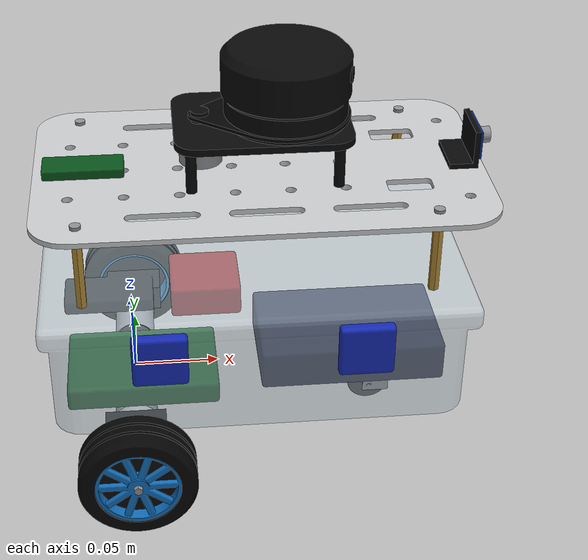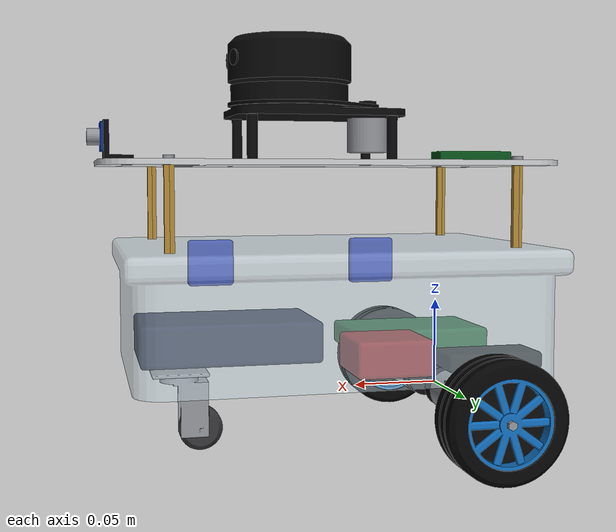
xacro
<?xml version="1.0"?>
<!--
  Robot: firefighter
  Generated by: LinkForge
  https://github.com/arounamounchili/linkforge
-->
<robot xmlns:xacro="http://ros.org/wiki/xacro" name="firefighter">
  <!-- Properties -->
  <xacro:property name="aluminium" value="0.78 0.79 0.8 1" />
  <xacro:property name="battery" value="0.07 0.09 0.2 1" />
  <xacro:property name="black_plastic" value="0.03 0.03 0.035 1" />
  <xacro:property name="brass" value="0.72 0.56 0.22 1" />
  <xacro:property name="clear_plastic" value="0.8 0.88 0.92 0.45" />
  <xacro:property name="latch_blue" value="0.08 0.16 0.7 1" />
  <xacro:property name="lens" value="0.02 0.02 0.03 1" />
  <xacro:property name="nylon" value="0.2 0.2 0.21 1" />
  <xacro:property name="pcb_blue" value="0.03 0.16 0.5 1" />
  <xacro:property name="pcb_green" value="0.03 0.32 0.1 1" />
  <xacro:property name="pcb_red" value="0.55 0.04 0.04 1" />
  <xacro:property name="rim_blue" value="0.06 0.42 0.72 1" />
  <xacro:property name="rubber" value="0.012 0.012 0.012 1" />
  <xacro:property name="steel" value="0.55 0.56 0.58 1" />
  <!-- Materials -->
  <material name="aluminium">
    <color rgba="${aluminium}" />
  </material>
  <material name="battery">
    <color rgba="${battery}" />
  </material>
  <material name="black_plastic">
    <color rgba="${black_plastic}" />
  </material>
  <material name="brass">
    <color rgba="${brass}" />
  </material>
  <material name="clear_plastic">
    <color rgba="${clear_plastic}" />
  </material>
  <material name="latch_blue">
    <color rgba="${latch_blue}" />
  </material>
  <material name="lens">
    <color rgba="${lens}" />
  </material>
  <material name="nylon">
    <color rgba="${nylon}" />
  </material>
  <material name="pcb_blue">
    <color rgba="${pcb_blue}" />
  </material>
  <material name="pcb_green">
    <color rgba="${pcb_green}" />
  </material>
  <material name="pcb_red">
    <color rgba="${pcb_red}" />
  </material>
  <material name="rim_blue">
    <color rgba="${rim_blue}" />
  </material>
  <material name="rubber">
    <color rgba="${rubber}" />
  </material>
  <material name="steel">
    <color rgba="${steel}" />
  </material>
  <!-- Links -->
  <link name="base_link">
    <inertial>
      <origin xyz="0.07 0 0.0495" rpy="0 0 0" />
      <mass value="0.9" />
      <inertia ixx="0.002506" ixy="0" ixz="0" iyy="0.004637" iyz="0" izz="0.006365" />
    </inertial>
    <visual>
      <origin xyz="0.075 0 0.0605" rpy="0 0 0" />
      <geometry>
        <mesh filename="package://firefighter_description/meshes/base_link_visual_0.stl" />
      </geometry>
      <material name="aluminium" />
    </visual>
    <visual>
      <origin xyz="0.125 -0.02 0.0285" rpy="0 0 0" />
      <geometry>
        <mesh filename="package://firefighter_description/meshes/base_link_visual_1.stl" />
      </geometry>
      <material name="battery" />
    </visual>
    <visual>
      <origin xyz="0.07675 0 0.0715" rpy="0 0 0" />
      <geometry>
        <mesh filename="package://firefighter_description/meshes/base_link_visual_2.stl" />
      </geometry>
      <material name="black_plastic" />
    </visual>
    <visual>
      <origin xyz="0.07 0 0.108" rpy="0 0 0" />
      <geometry>
        <mesh filename="package://firefighter_description/meshes/base_link_visual_3.stl" />
      </geometry>
      <material name="brass" />
    </visual>
    <visual>
      <origin xyz="0.07 0 0.0495" rpy="0 0 0" />
      <geometry>
        <mesh filename="package://firefighter_description/meshes/base_link_visual_4.stl" />
      </geometry>
      <material name="clear_plastic" />
    </visual>
    <visual>
      <origin xyz="0.07 -0.088 0.0675" rpy="0 0 0" />
      <geometry>
        <mesh filename="package://firefighter_description/meshes/base_link_visual_5.stl" />
      </geometry>
      <material name="latch_blue" />
    </visual>
    <visual>
      <origin xyz="0.0015 -0.027 0.078" rpy="0 0 0" />
      <geometry>
        <mesh filename="package://firefighter_description/meshes/base_link_visual_6.stl" />
      </geometry>
      <material name="pcb_green" />
    </visual>
    <visual>
      <origin xyz="0.045 0.045 0.0265" rpy="0 0 0" />
      <geometry>
        <mesh filename="package://firefighter_description/meshes/base_link_visual_7.stl" />
      </geometry>
      <material name="pcb_red" />
    </visual>
    <visual>
      <origin xyz="0.0715 0 0.06175" rpy="0 0 0" />
      <geometry>
        <mesh filename="package://firefighter_description/meshes/base_link_visual_8.stl" />
      </geometry>
      <material name="steel" />
    </visual>
    <collision>
      <origin xyz="0.07 0 0.0495" rpy="0 0 0" />
      <geometry>
        <box size="0.238 0.168 0.072" />
      </geometry>
    </collision>
    <collision>
      <origin xyz="0.075 0 0.132" rpy="0 0 0" />
      <geometry>
        <box size="0.25 0.15 0.003" />
      </geometry>
    </collision>
  </link>
  <link name="caster_swivel">
    <inertial>
      <origin xyz="-0.006 0 -0.01975" rpy="0 0 0" />
      <mass value="0.015" />
      <inertia ixx="1.645312e-06" ixy="0" ixz="0" iyy="1.740312e-06" iyz="0" izz="9.049999e-07" />
    </inertial>
    <visual>
      <origin xyz="-0.0025 0 -0.01775" rpy="0 0 0" />
      <geometry>
        <mesh filename="package://firefighter_description/meshes/caster_swivel_visual.stl" />
      </geometry>
      <material name="steel" />
    </visual>
    <collision>
      <origin xyz="-0.006 0 -0.01975" rpy="0 0 0" />
      <geometry>
        <box size="0.02 0.018 0.0315" />
      </geometry>
    </collision>
  </link>
  <link name="caster_wheel">
    <inertial>
      <origin xyz="0 1.396984e-09 0" rpy="0 0 0" />
      <mass value="0.008" />
      <inertia ixx="1e-06" ixy="0" ixz="0" iyy="1e-06" iyz="0" izz="1e-06" />
    </inertial>
    <visual>
      <geometry>
        <mesh filename="package://firefighter_description/meshes/caster_wheel_visual.stl" />
      </geometry>
      <material name="nylon" />
    </visual>
    <collision>
      <origin xyz="0 1.396984e-09 0" rpy="0 0 0" />
      <geometry>
        <sphere radius="0.0125" />
      </geometry>
    </collision>
  </link>
  <link name="laser">
    <inertial>
      <origin xyz="0 0 -0.01" rpy="0 0 0" />
      <mass value="0.17" />
      <inertia ixx="8.37675e-05" ixy="0" ixz="0" iyy="8.37675e-05" iyz="0" izz="0.00011" />
    </inertial>
    <visual>
      <origin xyz="-0.01325 0 -0.01" rpy="0 0 0" />
      <geometry>
        <mesh filename="package://firefighter_description/meshes/laser_visual_0.stl" />
      </geometry>
      <material name="black_plastic" />
    </visual>
    <visual>
      <origin xyz="0.033468 0 0" rpy="0 0 0" />
      <geometry>
        <mesh filename="package://firefighter_description/meshes/laser_visual_1.stl" />
      </geometry>
      <material name="lens" />
    </visual>
    <visual>
      <origin xyz="-0.009 0 -0.0255" rpy="0 0 0" />
      <geometry>
        <mesh filename="package://firefighter_description/meshes/laser_visual_2.stl" />
      </geometry>
      <material name="rubber" />
    </visual>
    <visual>
      <origin xyz="-0.047 0 -0.0425" rpy="0 0 0" />
      <geometry>
        <mesh filename="package://firefighter_description/meshes/laser_visual_3.stl" />
      </geometry>
      <material name="steel" />
    </visual>
    <collision>
      <origin xyz="0 0 -0.01" rpy="0 0 0" />
      <geometry>
        <cylinder radius="0.036" length="0.045" />
      </geometry>
    </collision>
  </link>
  <link name="left_wheel">
    <inertial>
      <origin xyz="0 0 0" rpy="-1.570796 0 0" />
      <mass value="0.04" />
      <inertia ixx="1.281583e-05" ixy="0" ixz="0" iyy="1.281583e-05" iyz="0" izz="2.1125e-05" />
    </inertial>
    <visual>
      <origin xyz="0 0.004 0" rpy="0 0 0" />
      <geometry>
        <mesh filename="package://firefighter_description/meshes/left_wheel_visual_0.stl" />
      </geometry>
      <material name="black_plastic" />
    </visual>
    <visual>
      <origin xyz="0 -0.016 0" rpy="0 0 0" />
      <geometry>
        <mesh filename="package://firefighter_description/meshes/left_wheel_visual_1.stl" />
      </geometry>
      <material name="brass" />
    </visual>
    <visual>
      <geometry>
        <mesh filename="package://firefighter_description/meshes/left_wheel_visual_2.stl" />
      </geometry>
      <material name="rim_blue" />
    </visual>
    <visual>
      <geometry>
        <mesh filename="package://firefighter_description/meshes/left_wheel_visual_3.stl" />
      </geometry>
      <material name="rubber" />
    </visual>
    <visual>
      <origin xyz="0 0.013 0" rpy="0 0 0" />
      <geometry>
        <mesh filename="package://firefighter_description/meshes/left_wheel_visual_4.stl" />
      </geometry>
      <material name="steel" />
    </visual>
    <collision>
      <origin xyz="0 0 0" rpy="-1.570796 0 0" />
      <geometry>
        <cylinder radius="0.0325" length="0.026" />
      </geometry>
    </collision>
  </link>
  <link name="right_wheel">
    <inertial>
      <origin xyz="0 0 0" rpy="1.570796 0 0" />
      <mass value="0.04" />
      <inertia ixx="1.281583e-05" ixy="0" ixz="0" iyy="1.281583e-05" iyz="0" izz="2.1125e-05" />
    </inertial>
    <visual>
      <origin xyz="0 -0.004 0" rpy="0 0 0" />
      <geometry>
        <mesh filename="package://firefighter_description/meshes/right_wheel_visual_0.stl" />
      </geometry>
      <material name="black_plastic" />
    </visual>
    <visual>
      <origin xyz="0 0.016 0" rpy="0 0 0" />
      <geometry>
        <mesh filename="package://firefighter_description/meshes/right_wheel_visual_1.stl" />
      </geometry>
      <material name="brass" />
    </visual>
    <visual>
      <geometry>
        <mesh filename="package://firefighter_description/meshes/right_wheel_visual_2.stl" />
      </geometry>
      <material name="rim_blue" />
    </visual>
    <visual>
      <geometry>
        <mesh filename="package://firefighter_description/meshes/right_wheel_visual_3.stl" />
      </geometry>
      <material name="rubber" />
    </visual>
    <visual>
      <origin xyz="0 -0.013 0" rpy="0 0 0" />
      <geometry>
        <mesh filename="package://firefighter_description/meshes/right_wheel_visual_4.stl" />
      </geometry>
      <material name="steel" />
    </visual>
    <collision>
      <origin xyz="0 0 0" rpy="1.570796 0 0" />
      <geometry>
        <cylinder radius="0.0325" length="0.026" />
      </geometry>
    </collision>
  </link>
  <link name="thermal_camera">
    <inertial>
      <origin xyz="-0.0045 0 0" rpy="0 0 0" />
      <mass value="0.005" />
      <inertia ixx="1e-06" ixy="0" ixz="0" iyy="1e-06" iyz="0" izz="1e-06" />
    </inertial>
    <visual>
      <geometry>
        <mesh filename="package://firefighter_description/meshes/thermal_camera_visual_0.stl" />
      </geometry>
      <material name="lens" />
    </visual>
    <visual>
      <origin xyz="-0.0078 0 0" rpy="0 0 0" />
      <geometry>
        <mesh filename="package://firefighter_description/meshes/thermal_camera_visual_1.stl" />
      </geometry>
      <material name="pcb_blue" />
    </visual>
    <visual>
      <origin xyz="-0.0035 0 0" rpy="0 0 0" />
      <geometry>
        <mesh filename="package://firefighter_description/meshes/thermal_camera_visual_2.stl" />
      </geometry>
      <material name="steel" />
    </visual>
    <collision>
      <origin xyz="-0.0045 0 0" rpy="0 0 0" />
      <geometry>
        <box size="0.009 0.028 0.016" />
      </geometry>
    </collision>
  </link>
  <!-- Joints -->
  <joint name="caster_swivel_joint" type="continuous">
    <origin xyz="0.155 0 0.0115" rpy="0 0 0" />
    <parent link="base_link" />
    <child link="caster_swivel" />
    <axis xyz="0 0 1" />
    <limit effort="1" velocity="100" lower="0" upper="0" />
  </joint>
  <joint name="caster_wheel_joint" type="continuous">
    <origin xyz="-0.012 0 -0.0315" rpy="0 0 0" />
    <parent link="caster_swivel" />
    <child link="caster_wheel" />
    <axis xyz="0 1 0" />
    <limit effort="1" velocity="100" lower="0" upper="0" />
  </joint>
  <joint name="laser_joint" type="fixed">
    <origin xyz="0.09 0 0.191" rpy="0 0 0" />
    <parent link="base_link" />
    <child link="laser" />
  </joint>
  <joint name="left_wheel_joint" type="continuous">
    <origin xyz="0 0.1 0" rpy="0 0 0" />
    <parent link="base_link" />
    <child link="left_wheel" />
    <axis xyz="0 1 0" />
    <limit effort="0.5" velocity="20" lower="0" upper="0" />
  </joint>
  <joint name="right_wheel_joint" type="continuous">
    <origin xyz="0 -0.1 0" rpy="0 0 0" />
    <parent link="base_link" />
    <child link="right_wheel" />
    <axis xyz="0 1 0" />
    <limit effort="0.5" velocity="20" lower="0" upper="0" />
  </joint>
  <joint name="thermal_camera_joint" type="fixed">
    <origin xyz="0.2046 0 0.1465" rpy="0 0 0" />
    <parent link="base_link" />
    <child link="thermal_camera" />
  </joint>
</robot>
